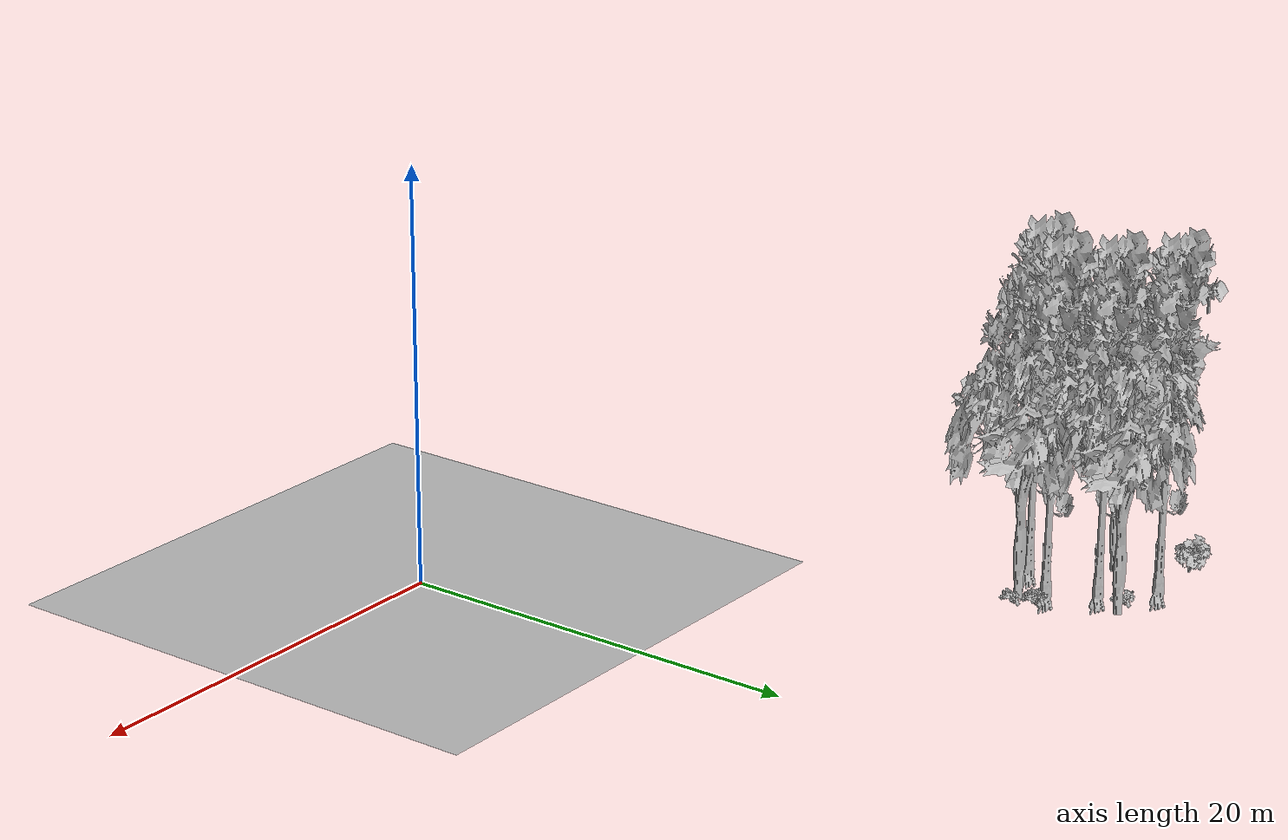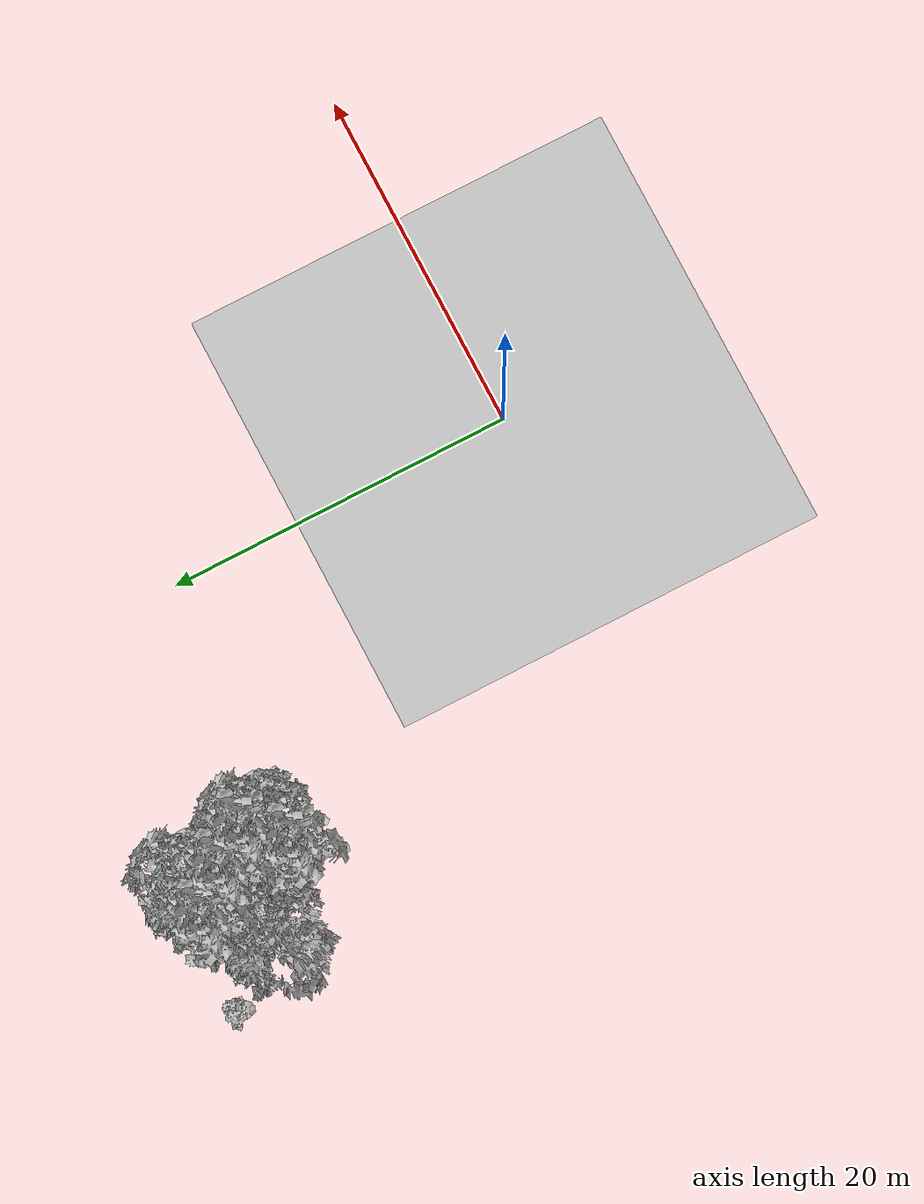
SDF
<sdf version="1.7">
 <world name="default">
  <model name="ground_plane">
   <static>1</static>
   <link name="link">
    <collision name="collision">
     <pose>-50 0 0 0 -0 0</pose>
     <geometry><plane><normal>0 0 1</normal><size>80 80</size></plane></geometry>
     <surface><contact><ode><min_depth>0.01</min_depth><max_vel>0</max_vel></ode></contact></surface>
    </collision>
    <visual name="grass">
     <cast_shadows>0</cast_shadows>
     <geometry>
      <mesh>
       <scale>0.46714285714285714 0.46714285714285714 0.1</scale>
       <uri>file://grass_plane/meshes/grass_plane.dae</uri>
      </mesh>
     </geometry>
    </visual>
   </link>
  </model>
  <model name="Tree 31">
   <static>1</static>
   <pose>-16.00540879406223 23.646981998691892 0 1.57079 -0 0</pose>
   <link name="link">
    <collision name="collision">
     <geometry><mesh><scale>3.5 5 3.5</scale><uri>model://tree_9/meshes/tree_9.obj</uri></mesh></geometry>
    </collision>
    <visual name="visual">
     <geometry><mesh><scale>3.5 5 3.5</scale><uri>model://tree_9/meshes/tree_9.obj</uri></mesh></geometry>
    </visual>
   </link>
  </model>
  <model name="Tree 292">
   <static>1</static>
   <pose>-17.891454444994 21.635079594742102 0 1.57079 -0 0</pose>
   <link name="link">
    <collision name="collision">
     <geometry><mesh><scale>3.5 5 3.5</scale><uri>model://tree_9/meshes/tree_9.obj</uri></mesh></geometry>
    </collision>
    <visual name="visual">
     <geometry><mesh><scale>3.5 5 3.5</scale><uri>model://tree_9/meshes/tree_9.obj</uri></mesh></geometry>
    </visual>
   </link>
  </model>
  <model name="Tree 376">
   <static>1</static>
   <pose>-15.283899672850314 22.66080610720647 0 1.57079 -0 0</pose>
   <link name="link">
    <collision name="collision">
     <geometry><mesh><scale>3.5 5 3.5</scale><uri>model://tree_2/meshes/tree_2.obj</uri></mesh></geometry>
    </collision>
    <visual name="visual">
     <geometry><mesh><scale>3.5 5 3.5</scale><uri>model://tree_2/meshes/tree_2.obj</uri></mesh></geometry>
    </visual>
   </link>
  </model>
  <model name="Tree 409">
   <static>1</static>
   <pose>-20.543960472409143 24.658714482756622 0 1.57079 -0 0</pose>
   <link name="link">
    <collision name="collision">
     <geometry><mesh><scale>3.5 5 3.5</scale><uri>model://tree_2/meshes/tree_2.obj</uri></mesh></geometry>
    </collision>
    <visual name="visual">
     <geometry><mesh><scale>3.5 5 3.5</scale><uri>model://tree_2/meshes/tree_2.obj</uri></mesh></geometry>
    </visual>
   </link>
  </model>
  <model name="Tree 412">
   <static>1</static>
   <pose>-17.366558782896647 25.591793310020606 0 1.57079 -0 0</pose>
   <link name="link">
    <collision name="collision">
     <geometry><mesh><scale>3.5 5 3.5</scale><uri>model://tree_9/meshes/tree_9.obj</uri></mesh></geometry>
    </collision>
    <visual name="visual">
     <geometry><mesh><scale>3.5 5 3.5</scale><uri>model://tree_9/meshes/tree_9.obj</uri></mesh></geometry>
    </visual>
   </link>
  </model>
  <model name="Tree 471">
   <static>1</static>
   <pose>-19.31547799372095 27.61297747127834 0 1.57079 -0 0</pose>
   <link name="link">
    <collision name="collision">
     <geometry><mesh><scale>3.5 5 3.5</scale><uri>model://tree_9/meshes/tree_9.obj</uri></mesh></geometry>
    </collision>
    <visual name="visual">
     <geometry><mesh><scale>3.5 5 3.5</scale><uri>model://tree_9/meshes/tree_9.obj</uri></mesh></geometry>
    </visual>
   </link>
  </model>
  <model name="Tree 508">
   <static>1</static>
   <pose>-16.36193283811325 27.214172708847926 0 1.57079 -0 0</pose>
   <link name="link">
    <collision name="collision">
     <geometry><mesh><scale>3.5 5 3.5</scale><uri>model://tree_2/meshes/tree_2.obj</uri></mesh></geometry>
    </collision>
    <visual name="visual">
     <geometry><mesh><scale>3.5 5 3.5</scale><uri>model://tree_2/meshes/tree_2.obj</uri></mesh></geometry>
    </visual>
   </link>
  </model>
  <model name="Bush 70">
   <static>1</static>
   <pose>-15.74536115966681 23.378167055611165 0 1.57079 -0 0</pose>
   <link name="link">
    <collision name="collision">
     <geometry><mesh><scale>2 2 2</scale><uri>model://bush_2/meshes/bush_2.obj</uri></mesh></geometry>
     <surface><contact><collide_without_contact>false</collide_without_contact></contact></surface>
    </collision>
    <visual name="visual">
     <geometry><mesh><scale>2 2 2</scale><uri>model://bush_2/meshes/bush_2.obj</uri></mesh></geometry>
    </visual>
   </link>
  </model>
  <model name="Bush 95">
   <static>1</static>
   <pose>-22.37479742846559 27.5383151690026 0 1.57079 -0 0</pose>
   <link name="link">
    <collision name="collision">
     <geometry><mesh><scale>2 2 2</scale><uri>model://bush_1/meshes/bush_1.obj</uri></mesh></geometry>
     <surface><contact><collide_without_contact>false</collide_without_contact></contact></surface>
    </collision>
    <visual name="visual">
     <geometry><mesh><scale>2 2 2</scale><uri>model://bush_1/meshes/bush_1.obj</uri></mesh></geometry>
    </visual>
   </link>
  </model>
  <model name="Bush 96">
   <static>1</static>
   <pose>-15.521444528997183 23.34508341556993 0 1.57079 -0 0</pose>
   <link name="link">
    <collision name="collision">
     <geometry><mesh><scale>2 2 2</scale><uri>model://bush_2/meshes/bush_2.obj</uri></mesh></geometry>
     <surface><contact><collide_without_contact>false</collide_without_contact></contact></surface>
    </collision>
    <visual name="visual">
     <geometry><mesh><scale>2 2 2</scale><uri>model://bush_2/meshes/bush_2.obj</uri></mesh></geometry>
    </visual>
   </link>
  </model>
  <model name="Bush 475">
   <static>1</static>
   <pose>-15.085897428363516 22.455472139689533 0 1.57079 -0 0</pose>
   <link name="link">
    <collision name="collision">
     <geometry><mesh><scale>2 2 2</scale><uri>model://bush_2/meshes/bush_2.obj</uri></mesh></geometry>
     <surface><contact><collide_without_contact>false</collide_without_contact></contact></surface>
    </collision>
    <visual name="visual">
     <geometry><mesh><scale>2 2 2</scale><uri>model://bush_2/meshes/bush_2.obj</uri></mesh></geometry>
    </visual>
   </link>
  </model>
  <model name="Bush 490">
   <static>1</static>
   <pose>-17.949068262073812 26.583459233029345 0 1.57079 -0 0</pose>
   <link name="link">
    <collision name="collision">
     <geometry><mesh><scale>2 2 2</scale><uri>model://bush_2/meshes/bush_2.obj</uri></mesh></geometry>
     <surface><contact><collide_without_contact>false</collide_without_contact></contact></surface>
    </collision>
    <visual name="visual">
     <geometry><mesh><scale>2 2 2</scale><uri>model://bush_2/meshes/bush_2.obj</uri></mesh></geometry>
    </visual>
   </link>
  </model>
 </world>
</sdf>
